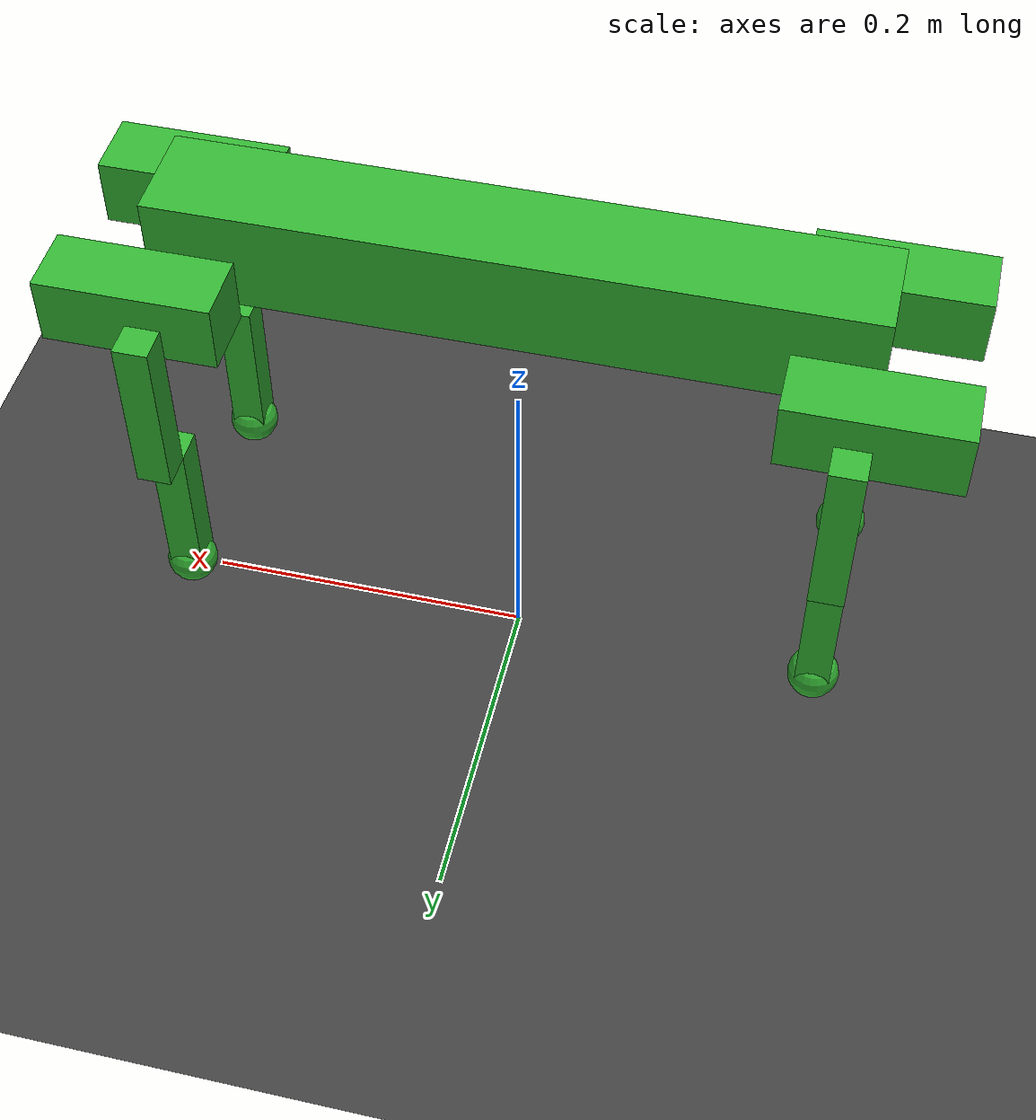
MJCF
<mujoco model="dog">
    <compiler angle="degree"/>
    <option timestep="0.001" gravity="0 0 -9.81"/>

    <!-- solref controls how soft/stiff constraints are -->
    <default>
        <equality solref="0.005 1" />
        <geom type="box" size="0.05 0.02 0.02" density="500" rgba="0.2 0.7 0.2 1"/>
        <!-- damping for a joint tells how stiff the joint is, 0.2 is light so its smooth but not too sluggish either -->
        <joint limited="true" range="-300 300"  armature="0.005"/>
        <!-- ctrlrange is the amount of power this joint gets. too high and it could break, too low and maybe it cant stand -->
        <motor ctrllimited="true" ctrlrange="-10 10"/>
    </default>

    <statistic center="1 -0.8 1.1" extent=".3"/>

    <visual>
        <headlight diffuse="0.6 0.6 0.6" ambient="0.1 0.1 0.1" specular="0.9 0.9 0.9"/>
        <rgba haze="0.15 0.25 0.35 1"/>
        <global azimuth="140" elevation="-20"/>
    </visual>

    <asset>
        <texture builtin='checker' height='512' name='plane' rgb1='0.2 0.2 0.2' rgb2='0.3 0.3 0.3' type='2d' width='512'/>
        <texture builtin='gradient' height='128' rgb1='0.4 0.6 0.8' rgb2='0 0 0' type='skybox' width='128'/>
        <texture type="skybox" builtin="gradient" rgb1="1 1 1" rgb2="1 1 1" width="800" height="800"/>
        <texture type="2d" name="groundplane" builtin="checker" mark="edge" rgb1="1 1 1" rgb2="1 1 1" markrgb="0 0 0" width="300" height="300"/>
        <material name='plane' reflectance='0.000000' texrepeat='1 1' texture='plane' texuniform='true'/>
    </asset>

    <worldbody>

        <geom conaffinity="1" contype="1" condim="3" friction="1 .1 .1" name="floor" pos="0 0 0" size="40 40 0.125" type="plane" material="plane" rgba="0.5 0.5 0.5 1.0"/>

        <body name="torso" pos="0 0 0.3">
            <joint type="free"/>
            <geom name="torso_geom" type="box" size="0.20 0.03 0.03" />

            <!-- front left leg -->
            <body name="fl_leg" pos="0.2 0.05 -0.02">
                <geom name= "fl_hip" type="box" size="0.05 0.02 0.02" pos="0 0 0"/>
                <joint name="fl_hip_x" type="hinge" axis="1 0 0" pos="0 0 0" damping="1" stiffness="7"/>

                <body name="fl_thigh" pos="-0.01 0.03 -0.05">
                    <joint name="front_left_hip" type="hinge" axis="0 1 0" pos="0 0 0.04"/>
                    <geom type="box" size="0.01 0.01 0.05" pos="0 0 0"/>

                    <body name="fl_shin" pos="0 -0.02 -0.1">
                        <joint name="front_left_knee" type="hinge" axis="0 1 0" pos="0 0 0.05"/>
                        <geom type="box" size="0.01 0.01 0.05" pos="0 0 0"/>

                        <body name="fl_foot" pos="0 0 -0.05">
                            <geom type="sphere" size="0.015"/>
                        </body>
                    </body>
                </body>
            </body>

            <!-- front right leg -->
            <body name="fr_leg" pos="0.2 -0.05 -0.02">
                <geom name= "fr_hip" type="box" size="0.05 0.02 0.02" pos="0 0 0"/>
                <joint name="fr_hip_x" type="hinge" axis="1 0 0" pos="0 0 0" damping="2" stiffness="7"/>

                <body name="fr_thigh" pos="-0.01 -0.03 -0.05">
                    <joint name="front_right_hip" type="hinge" axis="0 1 0" pos="0 0 0.04"/>
                    <geom type="box" size="0.01 0.01 0.05" pos="0 0 0"/>

                    <body name="fr_shin" pos="0 0.02 -0.1">
                        <joint name="front_right_knee" type="hinge" axis="0 1 0" pos="0 0 0.05"/>
                        <geom type="box" size="0.01 0.01 0.05" pos="0 0 0"/>

                        <body name="fr_foot" pos="0 0 -0.05">
                            <geom type="sphere" size="0.015"/>
                        </body>
                    </body>
                </body>
            </body>

            <!-- back left leg -->
            <body name="bl_leg" pos="-0.2 0.05 -0.02">
                <geom name= "bl_hip" type="box" size="0.05 0.02 0.02" pos="0 0 0"/>
                <joint name="bl_hip_x" type="hinge" axis="1 0 0" pos="0 0 0" damping="2" stiffness="7"/>

                <body name="bl_thigh" pos="0.01 0.03 -0.05">
                    <joint name="back_left_hip" type="hinge" axis="0 1 0" pos="0 0 0.04"/>
                    <geom type="box" size="0.01 0.01 0.05" pos="0 0 0"/>

                    <body name="bl_shin" pos="0 -0.02 -0.1">
                        <joint name="back_left_knee" type="hinge" axis="0 1 0" pos="0 0 0.05"/>
                        <geom type="box" size="0.01 0.01 0.05" pos="0 0 0"/>

                        <body name="bl_foot" pos="0 0 -0.05">
                            <geom type="sphere" size="0.015"/>
                        </body>
                    </body>
                </body>
            </body>

            <!-- back right leg -->
            <body name="br_leg" pos="-0.2 -0.05 -0.02">
                <geom name= "br_hip" type="box" size="0.05 0.02 0.02" pos="0 0 0"/>
                <joint name="br_hip_x" type="hinge" axis="1 0 0" pos="0 0 0" damping="1" stiffness="7"/>

                <body name="br_thigh" pos="0.01 -0.03 -0.05">
                    <joint name="back_right_hip" type="hinge" axis="0 1 0" pos="0 0 0.04"/>
                    <geom type="box" size="0.01 0.01 0.05" pos="0 0 0"/>

                    <body name="br_shin" pos="0 0.02 -0.1">
                        <joint name="back_right_knee" type="hinge" axis="0 1 0" pos="0 0 0.05"/>
                        <geom type="box" size="0.01 0.01 0.05" pos="0 0 0"/>

                        <body name="br_foot" pos="0 0 -0.05">
                            <geom type="sphere" size="0.015"/>
                        </body>
                    </body>
                </body>
            </body>

        </body>

    </worldbody>

    <actuator>
        <motor joint="fl_hip_x" name="fl_hip_x_motor"/>
        <motor joint="front_left_hip" name="fl_hip_motor"/>
        <motor joint="front_left_knee" name="fl_knee_motor"/>
        <motor joint="fr_hip_x" name="fr_hip_x_motor"/>
        <motor joint="front_right_hip" name="fr_hip_motor"/>
        <motor joint="front_right_knee" name="fr_knee_motor"/>
        <motor joint="bl_hip_x" name="bl_hip_x_motor"/>
        <motor joint="back_left_hip" name="bl_hip_motor"/>
        <motor joint="back_left_knee" name="bl_knee_motor"/>
        <motor joint="br_hip_x" name="br_hip_x_motor"/>
        <motor joint="back_right_hip" name="br_hip_motor"/>
        <motor joint="back_right_knee" name="br_knee_motor"/>
    </actuator>

    <sensor>
        <jointpos joint="fl_hip_x" name="fl_hip_x_sensor"/>
        <jointpos joint="front_left_hip" name="fl_hip_sensor"/>
        <jointpos joint="front_left_knee" name="fl_knee_sensor"/>
        <jointpos joint="fr_hip_x" name="fr_hip_x_sensor"/>
        <jointpos joint="front_right_hip" name="fr_hip_sensor"/>
        <jointpos joint="front_right_knee" name="fr_knee_sensor"/>
        <jointpos joint="bl_hip_x" name="bl_hip_x_sensor"/>
        <jointpos joint="back_left_hip" name="bl_hip_sensor"/>
        <jointpos joint="back_left_knee" name="bl_knee_sensor"/>
        <jointpos joint="br_hip_x" name="br_hip_x_sensor"/>
        <jointpos joint="back_right_hip" name="br_hip_sensor"/>
        <jointpos joint="back_right_knee" name="br_knee_sensor"/>
    </sensor>

</mujoco>
